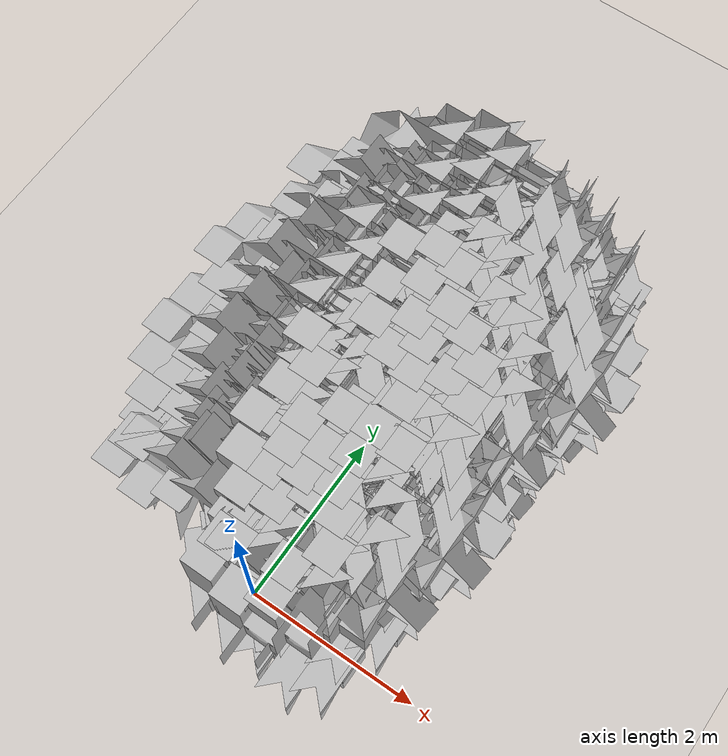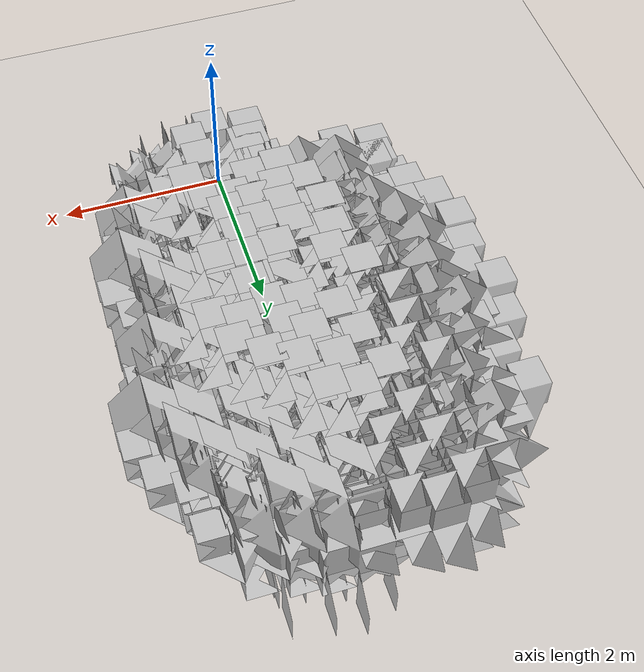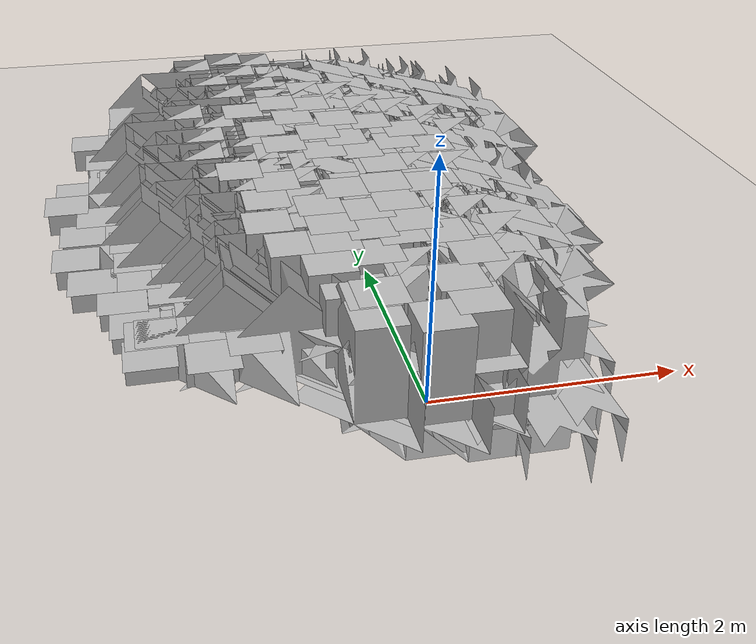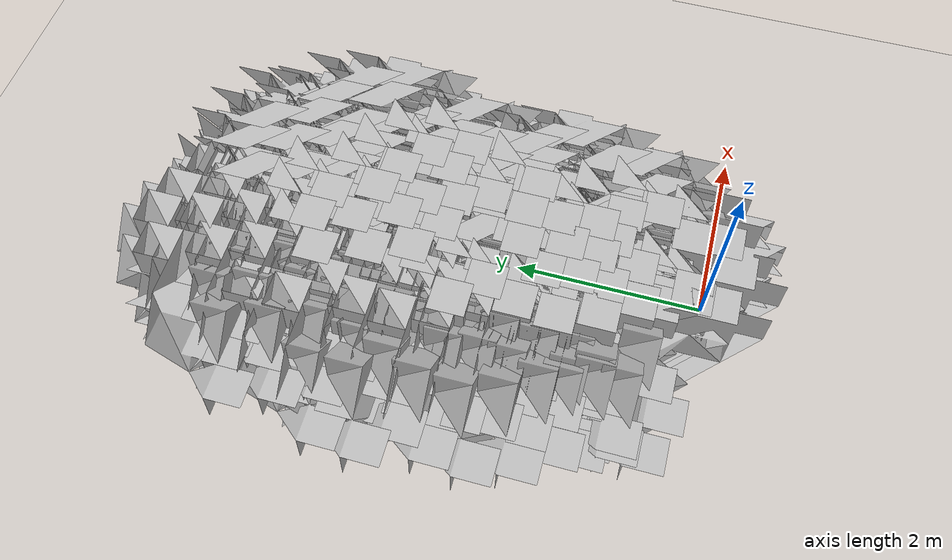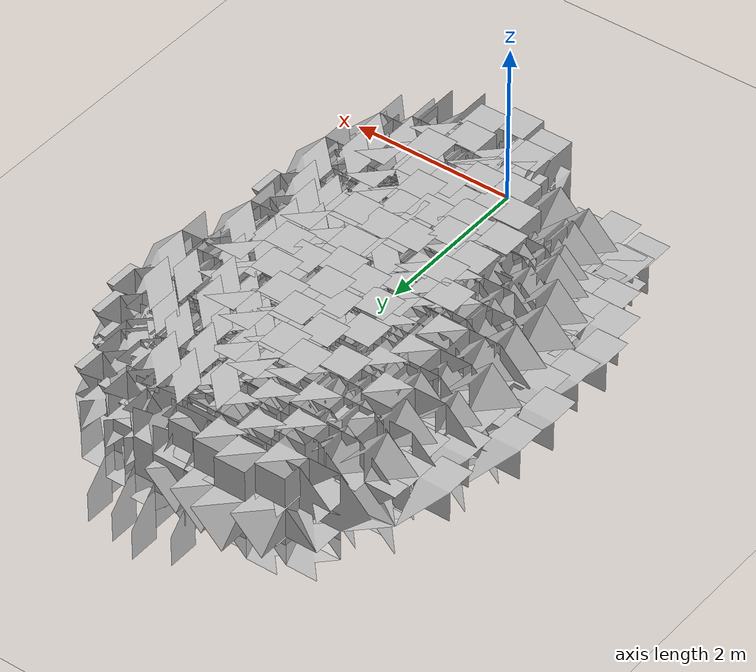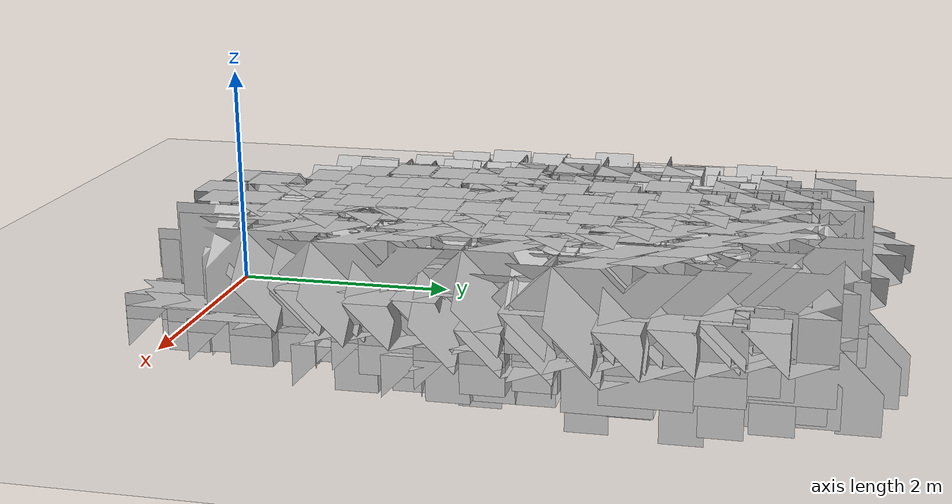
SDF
<sdf version="1.6">
 <world name="default">
  <light name="sun" type="directional">
   <pose>0 0 10 0 -0 0</pose>
   <diffuse>0.8 0.8 0.8 1</diffuse>
   <specular>0.2 0.2 0.2 1</specular>
   <attenuation>
    <range>1000</range>
    <constant>0.9</constant>
    <linear>0.01</linear>
    <quadratic>0.001</quadratic>
   </attenuation>
   <direction>-0.5 0.1 -0.9</direction>
  </light>
  <model name="ground_plane">
   <static>1</static>
   <link name="link">
    <collision name="collision">
     <geometry><plane><normal>0 0 1</normal><size>100 100</size></plane></geometry>
     <surface>
      <contact><collide_bitmask>65535</collide_bitmask></contact>
      <friction><ode><mu>100</mu><mu2>50</mu2></ode></friction>
     </surface>
    </collision>
    <visual name="visual">
     <cast_shadows>0</cast_shadows>
     <geometry><plane><normal>0 0 1</normal><size>100 100</size></plane></geometry>
     <material>
      <script><uri>file://media/materials/scripts/gazebo.material</uri><name>Gazebo/Grey</name></script>
     </material>
    </visual>
   </link>
  </model>
  <gravity>0 0 -9.8</gravity>
  <magnetic_field>6e-06 2.3e-05 -4.2e-05</magnetic_field>
  <atmosphere type="adiabatic"/>
  <physics name="default_physics" default="0" type="ode">
   <max_step_size>0.001</max_step_size>
   <real_time_factor>1</real_time_factor>
   <real_time_update_rate>1000</real_time_update_rate>
  </physics>
  <scene><ambient>0.4 0.4 0.4 1</ambient><background>0.7 0.7 0.7 1</background><shadows>1</shadows></scene>
  <spherical_coordinates>
   <surface_model>EARTH_WGS84</surface_model>
   <latitude_deg>0</latitude_deg>
   <longitude_deg>0</longitude_deg>
   <elevation>0</elevation>
   <heading_deg>0</heading_deg>
  </spherical_coordinates>
  <model name="Bush 2">
   <static>1</static>
   <pose>-0.48082 1.21167 -0.08209 1.57079 -0 0</pose>
   <link name="link">
    <visual name="visual">
     <geometry><mesh><scale>5 5 5</scale><uri>model://bush_2/meshes/bush_2.obj</uri></mesh></geometry>
    </visual>
   </link>
  </model>
  <model name="Bush 2_0">
   <static>1</static>
   <pose>-0.184187 1.21145 -0.136314 1.57079 -0 0</pose>
   <link name="link">
    <visual name="visual">
     <geometry><mesh><scale>5 5 5</scale><uri>model://bush_2/meshes/bush_2.obj</uri></mesh></geometry>
    </visual>
   </link>
  </model>
  <model name="Bush 2_1">
   <static>1</static>
   <pose>-0.290891 1.55917 0 1.57079 -0 0</pose>
   <link name="link">
    <visual name="visual">
     <geometry><mesh><scale>5 5 5</scale><uri>model://bush_2/meshes/bush_2.obj</uri></mesh></geometry>
    </visual>
   </link>
  </model>
  <model name="Bush 2_2">
   <static>1</static>
   <pose>-0.681944 1.48201 0 1.57079 -0 0</pose>
   <link name="link">
    <visual name="visual">
     <geometry><mesh><scale>5 5 5</scale><uri>model://bush_2/meshes/bush_2.obj</uri></mesh></geometry>
    </visual>
   </link>
  </model>
  <model name="Bush 2_3">
   <static>1</static>
   <pose>0.128536 1.49692 -0.07634 1.57079 -0 0</pose>
   <link name="link">
    <visual name="visual">
     <geometry><mesh><scale>5 5 5</scale><uri>model://bush_2/meshes/bush_2.obj</uri></mesh></geometry>
    </visual>
   </link>
  </model>
  <model name="Bush 2_4">
   <static>1</static>
   <pose>-0.412521 0.975783 0 1.57079 -0 0</pose>
   <link name="link">
    <visual name="visual">
     <geometry><mesh><scale>5 5 5</scale><uri>model://bush_2/meshes/bush_2.obj</uri></mesh></geometry>
    </visual>
   </link>
  </model>
  <model name="Bush 2_5">
   <static>1</static>
   <pose>-0.486151 0.95786 0 1.57079 -0 0</pose>
   <link name="link">
    <visual name="visual">
     <geometry><mesh><scale>5 5 5</scale><uri>model://bush_2/meshes/bush_2.obj</uri></mesh></geometry>
    </visual>
   </link>
  </model>
  <model name="Bush 2_6">
   <static>1</static>
   <pose>-0.064705 0.590441 0 1.57079 -0 0</pose>
   <link name="link">
    <visual name="visual">
     <geometry><mesh><scale>5 5 5</scale><uri>model://bush_2/meshes/bush_2.obj</uri></mesh></geometry>
    </visual>
   </link>
  </model>
  <model name="Bush 2_7">
   <static>1</static>
   <pose>-0.506307 0.700053 0 1.57079 -0 0</pose>
   <link name="link">
    <visual name="visual">
     <geometry><mesh><scale>5 5 5</scale><uri>model://bush_2/meshes/bush_2.obj</uri></mesh></geometry>
    </visual>
   </link>
  </model>
  <model name="Bush 2_8">
   <static>1</static>
   <pose>-0.598264 1.25237 -0.076831 1.57079 -0 0</pose>
   <link name="link">
    <visual name="visual">
     <geometry><mesh><scale>5 5 5</scale><uri>model://bush_2/meshes/bush_2.obj</uri></mesh></geometry>
    </visual>
   </link>
  </model>
  <model name="Bush 2_9">
   <static>1</static>
   <pose>-0.567458 1.81086 0 1.57079 -0 0</pose>
   <link name="link">
    <visual name="visual">
     <geometry><mesh><scale>5 5 5</scale><uri>model://bush_2/meshes/bush_2.obj</uri></mesh></geometry>
    </visual>
   </link>
  </model>
  <model name="Bush 2_10">
   <static>1</static>
   <pose>-0.24511 1.96393 0 1.57079 -0 0</pose>
   <link name="link">
    <visual name="visual">
     <geometry><mesh><scale>5 5 5</scale><uri>model://bush_2/meshes/bush_2.obj</uri></mesh></geometry>
    </visual>
   </link>
  </model>
  <model name="Bush 2_11">
   <static>1</static>
   <pose>-0.026352 1.83368 0 1.57079 -0 0</pose>
   <link name="link">
    <visual name="visual">
     <geometry><mesh><scale>5 5 5</scale><uri>model://bush_2/meshes/bush_2.obj</uri></mesh></geometry>
    </visual>
   </link>
  </model>
  <model name="Bush 2_12">
   <static>1</static>
   <pose>-0.543556 2.11483 0 1.57079 -0 0</pose>
   <link name="link">
    <visual name="visual">
     <geometry><mesh><scale>5 5 5</scale><uri>model://bush_2/meshes/bush_2.obj</uri></mesh></geometry>
    </visual>
   </link>
  </model>
  <model name="Bush 2_13">
   <static>1</static>
   <pose>-0.184088 2.29817 0 1.57079 -0 0</pose>
   <link name="link">
    <visual name="visual">
     <geometry><mesh><scale>5 5 5</scale><uri>model://bush_2/meshes/bush_2.obj</uri></mesh></geometry>
    </visual>
   </link>
  </model>
  <model name="Bush 2_14">
   <static>1</static>
   <pose>0.129768 2.04167 0 1.57079 -0 0</pose>
   <link name="link">
    <visual name="visual">
     <geometry><mesh><scale>5 5 5</scale><uri>model://bush_2/meshes/bush_2.obj</uri></mesh></geometry>
    </visual>
   </link>
  </model>
  <model name="Bush 2_15">
   <static>1</static>
   <pose>0.209467 1.07347 0 1.57079 -0 0</pose>
   <link name="link">
    <visual name="visual">
     <geometry><mesh><scale>5 5 5</scale><uri>model://bush_2/meshes/bush_2.obj</uri></mesh></geometry>
    </visual>
   </link>
  </model>
  <model name="Bush 2_16">
   <static>1</static>
   <pose>0.247606 0.753391 0 1.57079 -0 0</pose>
   <link name="link">
    <visual name="visual">
     <geometry><mesh><scale>5 5 5</scale><uri>model://bush_2/meshes/bush_2.obj</uri></mesh></geometry>
    </visual>
   </link>
  </model>
  <model name="Bush 2_17">
   <static>1</static>
   <pose>0.086882 2.41491 0 1.57079 -0 0</pose>
   <link name="link">
    <visual name="visual">
     <geometry><mesh><scale>5 5 5</scale><uri>model://bush_2/meshes/bush_2.obj</uri></mesh></geometry>
    </visual>
   </link>
  </model>
  <model name="Bush 2_18">
   <static>1</static>
   <pose>-0.573728 2.45414 0 1.57079 -0 0</pose>
   <link name="link">
    <visual name="visual">
     <geometry><mesh><scale>5 5 5</scale><uri>model://bush_2/meshes/bush_2.obj</uri></mesh></geometry>
    </visual>
   </link>
  </model>
  <model name="Bush 2_19">
   <static>1</static>
   <pose>-0.290366 2.7419 0 1.57079 -0 0</pose>
   <link name="link">
    <visual name="visual">
     <geometry><mesh><scale>5 5 5</scale><uri>model://bush_2/meshes/bush_2.obj</uri></mesh></geometry>
    </visual>
   </link>
  </model>
  <model name="Bush 2_20">
   <static>1</static>
   <pose>0.31335 1.79095 0 1.57079 -0 0</pose>
   <link name="link">
    <visual name="visual">
     <geometry><mesh><scale>5 5 5</scale><uri>model://bush_2/meshes/bush_2.obj</uri></mesh></geometry>
    </visual>
   </link>
  </model>
  <model name="Bush 2_21">
   <static>1</static>
   <pose>0.085238 2.78447 0 1.57079 -0 0</pose>
   <link name="link">
    <visual name="visual">
     <geometry><mesh><scale>5 5 5</scale><uri>model://bush_2/meshes/bush_2.obj</uri></mesh></geometry>
    </visual>
   </link>
  </model>
  <model name="Bush 2_22">
   <static>1</static>
   <pose>-0.854806 2.98247 0 1.57079 -0 0</pose>
   <link name="link">
    <visual name="visual">
     <geometry><mesh><scale>5 5 5</scale><uri>model://bush_2/meshes/bush_2.obj</uri></mesh></geometry>
    </visual>
   </link>
  </model>
  <model name="Bush 2_23">
   <static>1</static>
   <pose>-0.316489 3.14608 -0.063458 1.57079 -0 0</pose>
   <link name="link">
    <visual name="visual">
     <geometry><mesh><scale>5 5 5</scale><uri>model://bush_2/meshes/bush_2.obj</uri></mesh></geometry>
    </visual>
   </link>
  </model>
  <model name="Bush 2_24">
   <static>1</static>
   <pose>-0.686734 3.37883 -0.116772 1.57079 -0 0</pose>
   <link name="link">
    <visual name="visual">
     <geometry><mesh><scale>5 5 5</scale><uri>model://bush_2/meshes/bush_2.obj</uri></mesh></geometry>
    </visual>
   </link>
  </model>
  <model name="Bush 2_25">
   <static>1</static>
   <pose>-0.992874 2.64396 0 1.57079 -0 0</pose>
   <link name="link">
    <visual name="visual">
     <geometry><mesh><scale>5 5 5</scale><uri>model://bush_2/meshes/bush_2.obj</uri></mesh></geometry>
    </visual>
   </link>
  </model>
  <model name="Bush 2_26">
   <static>1</static>
   <pose>-1.04449 2.21955 0 1.57079 -0 0</pose>
   <link name="link">
    <visual name="visual">
     <geometry><mesh><scale>5 5 5</scale><uri>model://bush_2/meshes/bush_2.obj</uri></mesh></geometry>
    </visual>
   </link>
  </model>
  <model name="Bush 2_27">
   <static>1</static>
   <pose>-0.911029 1.81356 0 1.57079 -0 0</pose>
   <link name="link">
    <visual name="visual">
     <geometry><mesh><scale>5 5 5</scale><uri>model://bush_2/meshes/bush_2.obj</uri></mesh></geometry>
    </visual>
   </link>
  </model>
  <model name="Bush 2_28">
   <static>1</static>
   <pose>0.163518 3.19002 0 1.57079 -0 0</pose>
   <link name="link">
    <visual name="visual">
     <geometry><mesh><scale>5 5 5</scale><uri>model://bush_2/meshes/bush_2.obj</uri></mesh></geometry>
    </visual>
   </link>
  </model>
  <model name="Bush 2_29">
   <static>1</static>
   <pose>0.430141 2.36178 -0.178517 1.57079 -0 0</pose>
   <link name="link">
    <visual name="visual">
     <geometry><mesh><scale>5 5 5</scale><uri>model://bush_2/meshes/bush_2.obj</uri></mesh></geometry>
    </visual>
   </link>
  </model>
  <model name="Bush 2_30">
   <static>1</static>
   <pose>0.461281 1.42451 0 1.57079 -0 0</pose>
   <link name="link">
    <visual name="visual">
     <geometry><mesh><scale>5 5 5</scale><uri>model://bush_2/meshes/bush_2.obj</uri></mesh></geometry>
    </visual>
   </link>
  </model>
  <model name="Bush 2_31">
   <static>1</static>
   <pose>0.43895 2.7336 0 1.57079 -0 0</pose>
   <link name="link">
    <visual name="visual">
     <geometry><mesh><scale>5 5 5</scale><uri>model://bush_2/meshes/bush_2.obj</uri></mesh></geometry>
    </visual>
   </link>
  </model>
  <model name="Bush 2_32">
   <static>1</static>
   <pose>-0.310359 3.5966 0 1.57079 -0 0</pose>
   <link name="link">
    <visual name="visual">
     <geometry><mesh><scale>5 5 5</scale><uri>model://bush_2/meshes/bush_2.obj</uri></mesh></geometry>
    </visual>
   </link>
  </model>
  <model name="Bush 2_33">
   <static>1</static>
   <pose>0.026508 3.52847 0 1.57079 -0 0</pose>
   <link name="link">
    <visual name="visual">
     <geometry><mesh><scale>5 5 5</scale><uri>model://bush_2/meshes/bush_2.obj</uri></mesh></geometry>
    </visual>
   </link>
  </model>
  <model name="Bush 2_34">
   <static>1</static>
   <pose>-0.650722 3.81324 0 1.57079 -0 0</pose>
   <link name="link">
    <visual name="visual">
     <geometry><mesh><scale>5 5 5</scale><uri>model://bush_2/meshes/bush_2.obj</uri></mesh></geometry>
    </visual>
   </link>
  </model>
  <model name="Bush 2_35">
   <static>1</static>
   <pose>-0.282082 4.04849 0 1.57079 -0 0</pose>
   <link name="link">
    <visual name="visual">
     <geometry><mesh><scale>5 5 5</scale><uri>model://bush_2/meshes/bush_2.obj</uri></mesh></geometry>
    </visual>
   </link>
  </model>
  <model name="Bush 2_36">
   <static>1</static>
   <pose>-0.04905 3.858 0 1.57079 -0 0</pose>
   <link name="link">
    <visual name="visual">
     <geometry><mesh><scale>5 5 5</scale><uri>model://bush_2/meshes/bush_2.obj</uri></mesh></geometry>
    </visual>
   </link>
  </model>
  <model name="Bush 2_37">
   <static>1</static>
   <pose>0.53044 3.20118 -0.170004 1.57079 -0 0</pose>
   <link name="link">
    <visual name="visual">
     <geometry><mesh><scale>5 5 5</scale><uri>model://bush_2/meshes/bush_2.obj</uri></mesh></geometry>
    </visual>
   </link>
  </model>
  <model name="Bush 2_38">
   <static>1</static>
   <pose>0.404847 3.68228 0 1.57079 -0 0</pose>
   <link name="link">
    <visual name="visual">
     <geometry><mesh><scale>5 5 5</scale><uri>model://bush_2/meshes/bush_2.obj</uri></mesh></geometry>
    </visual>
   </link>
  </model>
  <model name="Bush 2_39">
   <static>1</static>
   <pose>-0.783783 4.23296 0 1.57079 -0 0</pose>
   <link name="link">
    <visual name="visual">
     <geometry><mesh><scale>5 5 5</scale><uri>model://bush_2/meshes/bush_2.obj</uri></mesh></geometry>
    </visual>
   </link>
  </model>
  <model name="Bush 2_40">
   <static>1</static>
   <pose>-1.14316 3.27319 0 1.57079 -0 0</pose>
   <link name="link">
    <visual name="visual">
     <geometry><mesh><scale>5 5 5</scale><uri>model://bush_2/meshes/bush_2.obj</uri></mesh></geometry>
    </visual>
   </link>
  </model>
  <model name="Bush 2_41">
   <static>1</static>
   <pose>-1.06761 3.74524 -0.085656 1.57079 -0 0</pose>
   <link name="link">
    <visual name="visual">
     <geometry><mesh><scale>5 5 5</scale><uri>model://bush_2/meshes/bush_2.obj</uri></mesh></geometry>
    </visual>
   </link>
  </model>
  <model name="Bush 2_42">
   <static>1</static>
   <pose>-0.454837 4.48756 0 1.57079 -0 0</pose>
   <link name="link">
    <visual name="visual">
     <geometry><mesh><scale>5 5 5</scale><uri>model://bush_2/meshes/bush_2.obj</uri></mesh></geometry>
    </visual>
   </link>
  </model>
  <model name="Bush 2_43">
   <static>1</static>
   <pose>-0.035197 4.36859 0 1.57079 -0 0</pose>
   <link name="link">
    <visual name="visual">
     <geometry><mesh><scale>5 5 5</scale><uri>model://bush_2/meshes/bush_2.obj</uri></mesh></geometry>
    </visual>
   </link>
  </model>
  <model name="Bush 2_44">
   <static>1</static>
   <pose>0.275576 4.21917 0 1.57079 -0 0</pose>
   <link name="link">
    <visual name="visual">
     <geometry><mesh><scale>5 5 5</scale><uri>model://bush_2/meshes/bush_2.obj</uri></mesh></geometry>
    </visual>
   </link>
  </model>
  <model name="Bush 2_45">
   <static>1</static>
   <pose>0.564489 3.96134 0 1.57079 -0 0</pose>
   <link name="link">
    <visual name="visual">
     <geometry><mesh><scale>5 5 5</scale><uri>model://bush_2/meshes/bush_2.obj</uri></mesh></geometry>
    </visual>
   </link>
  </model>
  <model name="Bush 2_46">
   <static>1</static>
   <pose>0.71195 3.54487 0 1.57079 -0 0</pose>
   <link name="link">
    <visual name="visual">
     <geometry><mesh><scale>5 5 5</scale><uri>model://bush_2/meshes/bush_2.obj</uri></mesh></geometry>
    </visual>
   </link>
  </model>
  <model name="Bush 2_47">
   <static>1</static>
   <pose>-0.929725 4.74512 0 1.57079 -0 0</pose>
   <link name="link">
    <visual name="visual">
     <geometry><mesh><scale>5 5 5</scale><uri>model://bush_2/meshes/bush_2.obj</uri></mesh></geometry>
    </visual>
   </link>
  </model>
  <model name="Bush 2_48">
   <static>1</static>
   <pose>-0.554942 4.91129 0 1.57079 -0 0</pose>
   <link name="link">
    <visual name="visual">
     <geometry><mesh><scale>5 5 5</scale><uri>model://bush_2/meshes/bush_2.obj</uri></mesh></geometry>
    </visual>
   </link>
  </model>
  <model name="Bush 2_49">
   <static>1</static>
   <pose>-0.2266 4.82538 0 1.57079 -0 0</pose>
   <link name="link">
    <visual name="visual">
     <geometry><mesh><scale>5 5 5</scale><uri>model://bush_2/meshes/bush_2.obj</uri></mesh></geometry>
    </visual>
   </link>
  </model>
  <model name="Bush 2_50">
   <static>1</static>
   <pose>0.213922 4.68103 -0.083918 1.57079 -0 0</pose>
   <link name="link">
    <visual name="visual">
     <geometry><mesh><scale>5 5 5</scale><uri>model://bush_2/meshes/bush_2.obj</uri></mesh></geometry>
    </visual>
   </link>
  </model>
  <model name="Bush 2_51">
   <static>1</static>
   <pose>0.256015 4.33514 -0.037313 1.57079 -0 0</pose>
   <link name="link">
    <visual name="visual">
     <geometry><mesh><scale>5 5 5</scale><uri>model://bush_2/meshes/bush_2.obj</uri></mesh></geometry>
    </visual>
   </link>
  </model>
 </world>
</sdf>
